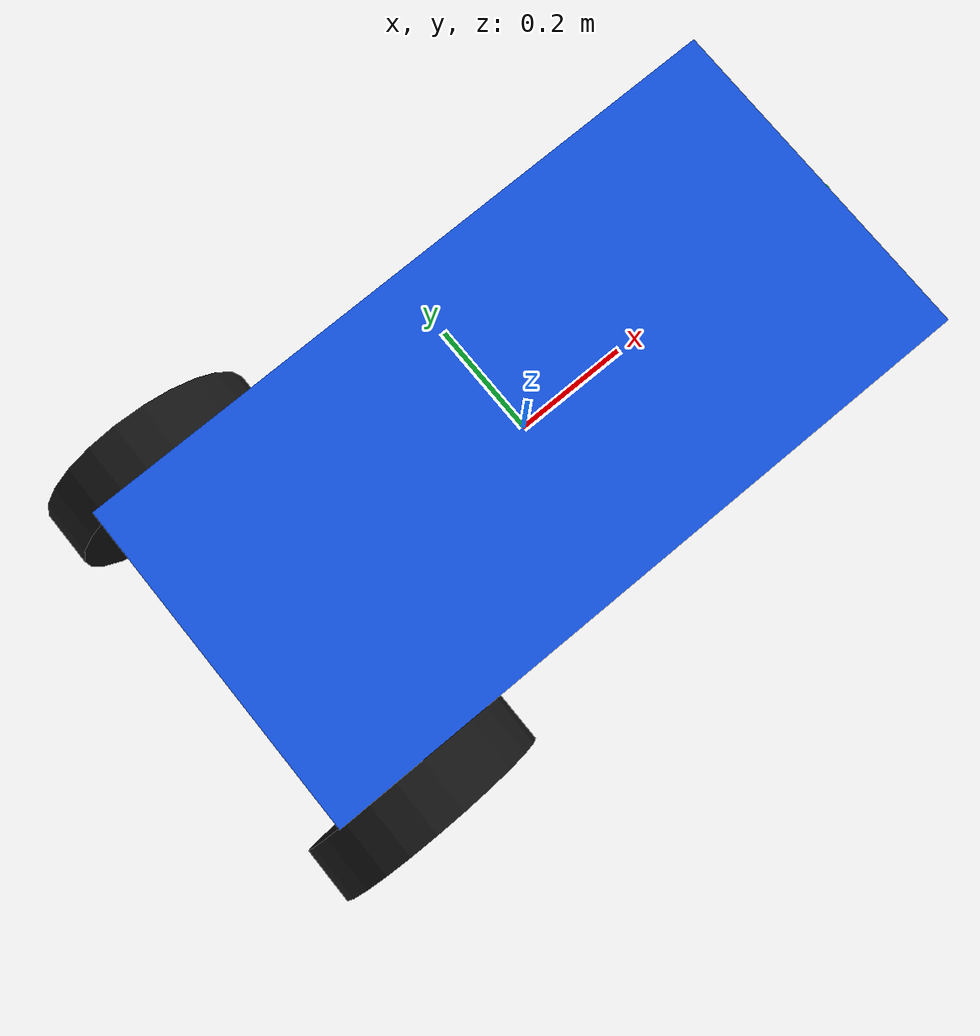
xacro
<?xml version="1.0"?>
<robot name="rear_steer_cart" xmlns:xacro="http://www.ros.org/wiki/xacro">
  <xacro:include filename="$(find simulation)/urdf/cart_base.xacro"/>
  <xacro:include filename="$(find simulation)/urdf/wheel.xacro"/>
  <xacro:include filename="$(find simulation)/urdf/rgbd_camera.xacro"/>

  <xacro:cart_base prefix=""/>
  <link name="front_caster_link">
    <visual>
      <geometry><sphere radius="0.2"/></geometry>
      <material name="caster_green"><color rgba="0 1 0 1"/></material>
    </visual>
    <collision><geometry><sphere radius="0.2"/></geometry></collision>
  </link>
  <link name="rear_left_steering_link"/>
  <link name="rear_right_steering_link"/>
  <xacro:wheel prefix="" suffix="rear_left_wheel"/>
  <xacro:wheel prefix="" suffix="rear_right_wheel"/>
  <xacro:rgbd_camera prefix=""/>

  <joint name="front_caster_joint" type="continuous">
    <parent link="base_link"/>
    <child link="front_caster_link"/>
    <origin xyz="0.5 0.0 -0.14" rpy="0 0 0"/>
    <axis xyz="0 0 1"/>
  </joint>

  <joint name="rear_left_steering_joint" type="revolute">
    <parent link="base_link"/>
    <child link="rear_left_steering_link"/><origin xyz="-0.5 0.35 -0.14"/>
    <axis xyz="0 0 1"/><limit lower="-0.6" upper="0.6" effort="10" velocity="1"/>
  </joint>
  <joint name="rear_left_wheel_joint" type="continuous">
    <parent link="rear_left_steering_link"/><child link="rear_left_wheel"/>
    <origin rpy="1.5708 0 0"/><axis xyz="0 0 1"/>
  </joint>
  <joint name="rear_right_steering_joint" type="revolute">
    <parent link="base_link"/><child link="rear_right_steering_link"/>
    <origin xyz="-0.5 -0.35 -0.14"/><axis xyz="0 0 1"/>
    <limit lower="-0.6" upper="0.6" effort="10" velocity="1"/>
  </joint>
  <joint name="rear_right_wheel_joint" type="continuous">
    <parent link="rear_right_steering_link"/><child link="rear_right_wheel"/>
    <origin rpy="1.5708 0 0"/><axis xyz="0 0 1"/>
  </joint>
</robot>

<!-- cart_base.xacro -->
<robot xmlns:xacro="http://www.ros.org/wiki/xacro">
  <xacro:macro name="cart_base" params="prefix">
    <link name="${prefix}base_link">
      <visual>
        <geometry>
          <box size="1.2 0.6 0.2"/>
        </geometry>
        <material name="platform_blue">
          <color rgba="0.08 0.35 0.95 1.0"/>
        </material>
      </visual>
      <collision>
        <geometry>
          <box size="1.2 0.6 0.2"/>
        </geometry>
      </collision>
      <inertial>
        <mass value="10.0"/>
        <inertia ixx="1.0" iyy="1.0" izz="1.0"/>
      </inertial>
    </link>
  </xacro:macro>
</robot>

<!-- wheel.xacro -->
<robot xmlns:xacro="http://www.ros.org/wiki/xacro">
  <xacro:macro name="wheel" params="prefix suffix">
    <link name="${prefix}${suffix}">
      <visual>
        <geometry>
          <cylinder length="0.10" radius="0.2"/>
        </geometry>
        <material name="wheel_black">
          <color rgba="0.08 0.08 0.08 1.0"/>
        </material>
      </visual>
      <collision>
        <geometry>
          <cylinder length="0.10" radius="0.2"/>
        </geometry>
      </collision>
      <inertial>
        <mass value="1.0"/>
        <inertia ixx="0.1" iyy="0.1" izz="0.1"/>
      </inertial>
    </link>
  </xacro:macro>
</robot>

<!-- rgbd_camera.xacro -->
<robot xmlns:xacro="http://www.ros.org/wiki/xacro">
  <xacro:macro name="rgbd_camera" params="prefix">
    <link name="${prefix}camera_link"/>
    <link name="${prefix}camera_optical_frame"/>
    <joint name="${prefix}camera_joint" type="fixed">
      <parent link="${prefix}base_link"/><child link="${prefix}camera_link"/>
      <origin xyz="-0.5 0 0.6" rpy="0 -0.6981317 0"/>
    </joint>
    <!-- ROS optical frame: x right, y down, z forward. -->
    <joint name="${prefix}camera_optical_joint" type="fixed">
      <parent link="${prefix}camera_link"/><child link="${prefix}camera_optical_frame"/>
      <origin xyz="0 0 0" rpy="-1.5708 0 -1.5708"/>
    </joint>
  </xacro:macro>
</robot>
